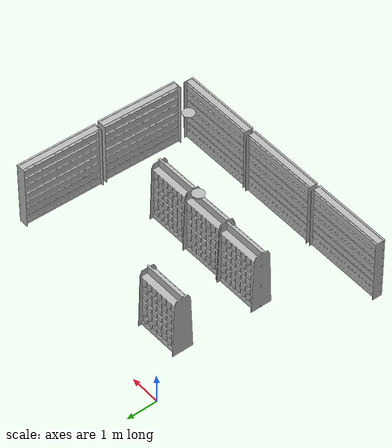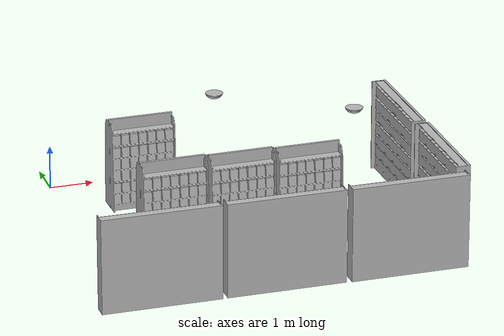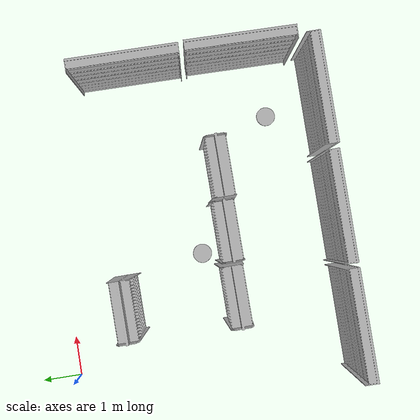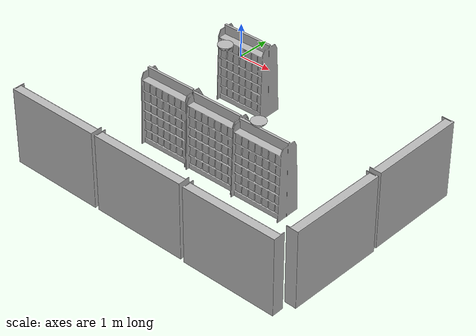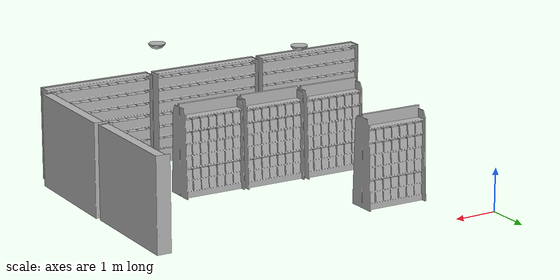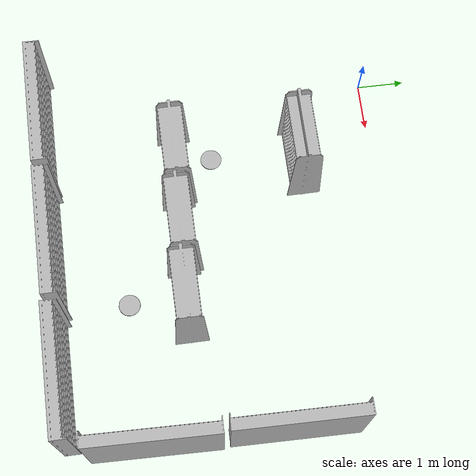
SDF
<sdf version="1.7">
 <world name="default">
  <model name="BookshelfB_01_003">
   <frame name="aws_robomaker_retail_BookshelfB_01::__model__" attached_to="aws_robomaker_retail_BookshelfB_01::link">
    <pose relative_to="__model__">0 0 0 0 -0 0</pose>
   </frame>
   <link name="aws_robomaker_retail_BookshelfB_01::link">
    <inertial>
     <mass>50</mass>
     <inertia><ixx>19.8742</ixx><ixy>0</ixy><ixz>0</ixz><iyy>49.1263</iyy><iyz>0</iyz><izz>30.2231</izz></inertia>
    </inertial>
    <collision name="collision">
     <geometry>
      <mesh>
       <uri>file://models/aws_robomaker_retail_BookshelfB_01/meshes/aws_BookshelfB_01_collision.DAE</uri>
       <scale>1 1 1</scale>
      </mesh>
     </geometry>
    </collision>
    <visual name="visual">
     <geometry>
      <mesh><uri>file://models/aws_robomaker_retail_BookshelfB_01/meshes/aws_BookshelfB_01_visual.DAE</uri></mesh>
     </geometry>
     <meta><layer>1</layer></meta>
    </visual>
    <pose relative_to="aws_robomaker_retail_BookshelfB_01::__model__">0 0 0 0 -0 0</pose>
   </link>
   <static>1</static>
   <pose>0.522246 -6.9715 0.017947 -0.003292 0 0</pose>
  </model>
  <model name="BookshelfB_01_004">
   <frame name="aws_robomaker_retail_BookshelfB_01::__model__" attached_to="aws_robomaker_retail_BookshelfB_01::link">
    <pose relative_to="__model__">0 0 0 0 -0 0</pose>
   </frame>
   <link name="aws_robomaker_retail_BookshelfB_01::link">
    <inertial>
     <mass>50</mass>
     <inertia><ixx>19.8742</ixx><ixy>0</ixy><ixz>0</ixz><iyy>49.1263</iyy><iyz>0</iyz><izz>30.2231</izz></inertia>
    </inertial>
    <collision name="collision">
     <geometry>
      <mesh>
       <uri>file://models/aws_robomaker_retail_BookshelfB_01/meshes/aws_BookshelfB_01_collision.DAE</uri>
       <scale>1 1 1</scale>
      </mesh>
     </geometry>
    </collision>
    <visual name="visual">
     <geometry>
      <mesh><uri>file://models/aws_robomaker_retail_BookshelfB_01/meshes/aws_BookshelfB_01_visual.DAE</uri></mesh>
     </geometry>
     <meta><layer>1</layer></meta>
    </visual>
    <pose relative_to="aws_robomaker_retail_BookshelfB_01::__model__">0 0 0 0 -0 0</pose>
   </link>
   <static>1</static>
   <pose>3.29339 -6.96366 0.017383 8e-06 -2e-06 -0</pose>
  </model>
  <model name="BookshelfB_01_005">
   <frame name="aws_robomaker_retail_BookshelfB_01::__model__" attached_to="aws_robomaker_retail_BookshelfB_01::link">
    <pose relative_to="__model__">0 0 0 0 -0 0</pose>
   </frame>
   <link name="aws_robomaker_retail_BookshelfB_01::link">
    <inertial>
     <mass>50</mass>
     <inertia><ixx>19.8742</ixx><ixy>0</ixy><ixz>0</ixz><iyy>49.1263</iyy><iyz>0</iyz><izz>30.2231</izz></inertia>
    </inertial>
    <collision name="collision">
     <geometry>
      <mesh>
       <uri>file://models/aws_robomaker_retail_BookshelfB_01/meshes/aws_BookshelfB_01_collision.DAE</uri>
       <scale>1 1 1</scale>
      </mesh>
     </geometry>
    </collision>
    <visual name="visual">
     <geometry>
      <mesh><uri>file://models/aws_robomaker_retail_BookshelfB_01/meshes/aws_BookshelfB_01_visual.DAE</uri></mesh>
     </geometry>
     <meta><layer>1</layer></meta>
    </visual>
    <pose relative_to="aws_robomaker_retail_BookshelfB_01::__model__">0 0 0 0 -0 0</pose>
   </link>
   <static>1</static>
   <pose>6.08038 -6.98766 0.017409 0.000174 4e-06 0</pose>
  </model>
  <model name="BookshelfB_01_006">
   <frame name="aws_robomaker_retail_BookshelfB_01::__model__" attached_to="aws_robomaker_retail_BookshelfB_01::link">
    <pose relative_to="__model__">0 0 0 0 -0 0</pose>
   </frame>
   <link name="aws_robomaker_retail_BookshelfB_01::link">
    <inertial>
     <mass>50</mass>
     <inertia><ixx>19.8742</ixx><ixy>0</ixy><ixz>0</ixz><iyy>49.1263</iyy><iyz>0</iyz><izz>30.2231</izz></inertia>
    </inertial>
    <collision name="collision">
     <geometry>
      <mesh>
       <uri>file://models/aws_robomaker_retail_BookshelfB_01/meshes/aws_BookshelfB_01_collision.DAE</uri>
       <scale>1 1 1</scale>
      </mesh>
     </geometry>
    </collision>
    <visual name="visual">
     <geometry>
      <mesh><uri>file://models/aws_robomaker_retail_BookshelfB_01/meshes/aws_BookshelfB_01_visual.DAE</uri></mesh>
     </geometry>
     <meta><layer>1</layer></meta>
    </visual>
    <pose relative_to="aws_robomaker_retail_BookshelfB_01::__model__">0 0 0 0 -0 0</pose>
   </link>
   <static>1</static>
   <pose>7.47833 -5.2983 0.017443 -0.001974 -0.000211 1.55406</pose>
  </model>
  <model name="BookshelfB_01_007">
   <frame name="aws_robomaker_retail_BookshelfB_01::__model__" attached_to="aws_robomaker_retail_BookshelfB_01::link">
    <pose relative_to="__model__">0 0 0 0 -0 0</pose>
   </frame>
   <link name="aws_robomaker_retail_BookshelfB_01::link">
    <inertial>
     <mass>50</mass>
     <inertia><ixx>19.8742</ixx><ixy>0</ixy><ixz>0</ixz><iyy>49.1263</iyy><iyz>0</iyz><izz>30.2231</izz></inertia>
    </inertial>
    <collision name="collision">
     <geometry>
      <mesh>
       <uri>file://models/aws_robomaker_retail_BookshelfB_01/meshes/aws_BookshelfB_01_collision.DAE</uri>
       <scale>1 1 1</scale>
      </mesh>
     </geometry>
    </collision>
    <visual name="visual">
     <geometry>
      <mesh><uri>file://models/aws_robomaker_retail_BookshelfB_01/meshes/aws_BookshelfB_01_visual.DAE</uri></mesh>
     </geometry>
     <meta><layer>1</layer></meta>
    </visual>
    <pose relative_to="aws_robomaker_retail_BookshelfB_01::__model__">0 0 0 0 -0 0</pose>
   </link>
   <static>1</static>
   <pose>7.47833 -2.51065 0.017402 1e-05 -1.3e-05 1.56207</pose>
  </model>
  <model name="LightA_01_001">
   <frame name="aws_robomaker_retail_LightA_01::__model__" attached_to="aws_robomaker_retail_LightA_01::link">
    <pose relative_to="__model__">0 0 0 0 -0 0</pose>
   </frame>
   <link name="aws_robomaker_retail_LightA_01::link">
    <inertial><mass>1</mass></inertial>
    <collision name="collision">
     <geometry>
      <mesh>
       <uri>file://models/aws_robomaker_retail_LightA_01/meshes/aws_LightA_01_collision.DAE</uri>
       <scale>1 1 1</scale>
      </mesh>
     </geometry>
    </collision>
    <visual name="visual">
     <geometry>
      <mesh><uri>file://models/aws_robomaker_retail_LightA_01/meshes/aws_LightA_01_visual.DAE</uri></mesh>
     </geometry>
     <meta><layer>3</layer></meta>
    </visual>
    <pose relative_to="aws_robomaker_retail_LightA_01::__model__">0 0 0 0 -0 0</pose>
   </link>
   <static>1</static>
   <pose>2.77442 -3.62815 3.15033 0 -0 0</pose>
  </model>
  <model name="LightA_01_002">
   <frame name="aws_robomaker_retail_LightA_01::__model__" attached_to="aws_robomaker_retail_LightA_01::link">
    <pose relative_to="__model__">0 0 0 0 -0 0</pose>
   </frame>
   <link name="aws_robomaker_retail_LightA_01::link">
    <inertial><mass>1</mass></inertial>
    <collision name="collision">
     <geometry>
      <mesh>
       <uri>file://models/aws_robomaker_retail_LightA_01/meshes/aws_LightA_01_collision.DAE</uri>
       <scale>1 1 1</scale>
      </mesh>
     </geometry>
    </collision>
    <visual name="visual">
     <geometry>
      <mesh><uri>file://models/aws_robomaker_retail_LightA_01/meshes/aws_LightA_01_visual.DAE</uri></mesh>
     </geometry>
     <meta><layer>3</layer></meta>
    </visual>
    <pose relative_to="aws_robomaker_retail_LightA_01::__model__">0 0 0 0 -0 0</pose>
   </link>
   <static>1</static>
   <pose>5.38399 -5.38371 3.15033 0 -0 0</pose>
  </model>
  <model name="BookshelfA_01_003_clone_clone">
   <frame name="aws_robomaker_retail_BookshelfA_01::__model__" attached_to="aws_robomaker_retail_BookshelfA_01::link">
    <pose relative_to="__model__">0 0 0 0 -0 0</pose>
   </frame>
   <link name="aws_robomaker_retail_BookshelfA_01::link">
    <inertial>
     <mass>50</mass>
     <inertia><ixx>27.7341</ixx><ixy>0</ixy><ixz>0</ixz><iyy>20.9361</iyy><iyz>0</iyz><izz>11.3596</izz></inertia>
    </inertial>
    <collision name="collision">
     <geometry>
      <mesh>
       <uri>file://models/aws_robomaker_retail_BookshelfA_01/meshes/aws_BookshelfA_01_collision.DAE</uri>
       <scale>1 1 1</scale>
      </mesh>
     </geometry>
    </collision>
    <visual name="visual">
     <geometry>
      <mesh><uri>file://models/aws_robomaker_retail_BookshelfA_01/meshes/aws_BookshelfA_01_visual.DAE</uri></mesh>
     </geometry>
     <meta><layer>1</layer></meta>
    </visual>
    <pose relative_to="aws_robomaker_retail_BookshelfA_01::__model__">0 0 0 0 -0 0</pose>
   </link>
   <static>1</static>
   <pose>3.15009 -4.31485 0.052359 0.001956 0.001359 -1.56243</pose>
  </model>
  <model name="BookshelfA_01_003_clone_clone_0">
   <frame name="aws_robomaker_retail_BookshelfA_01::__model__" attached_to="aws_robomaker_retail_BookshelfA_01::link">
    <pose relative_to="__model__">0 0 0 0 -0 0</pose>
   </frame>
   <link name="aws_robomaker_retail_BookshelfA_01::link">
    <inertial>
     <mass>50</mass>
     <inertia><ixx>27.7341</ixx><ixy>0</ixy><ixz>0</ixz><iyy>20.9361</iyy><iyz>0</iyz><izz>11.3596</izz></inertia>
    </inertial>
    <collision name="collision">
     <geometry>
      <mesh>
       <uri>file://models/aws_robomaker_retail_BookshelfA_01/meshes/aws_BookshelfA_01_collision.DAE</uri>
       <scale>1 1 1</scale>
      </mesh>
     </geometry>
    </collision>
    <visual name="visual">
     <geometry>
      <mesh><uri>file://models/aws_robomaker_retail_BookshelfA_01/meshes/aws_BookshelfA_01_visual.DAE</uri></mesh>
     </geometry>
     <meta><layer>1</layer></meta>
    </visual>
    <pose relative_to="aws_robomaker_retail_BookshelfA_01::__model__">0 0 0 0 -0 0</pose>
   </link>
   <static>1</static>
   <pose>1.61139 -4.27742 0.05231 0.001956 0.001359 -1.56243</pose>
  </model>
  <model name="BookshelfA_01_003_clone_clone_3_clone">
   <frame name="aws_robomaker_retail_BookshelfA_01::__model__" attached_to="aws_robomaker_retail_BookshelfA_01::link">
    <pose relative_to="__model__">0 0 0 0 -0 0</pose>
   </frame>
   <link name="aws_robomaker_retail_BookshelfA_01::link">
    <inertial>
     <mass>50</mass>
     <inertia><ixx>27.7341</ixx><ixy>0</ixy><ixz>0</ixz><iyy>20.9361</iyy><iyz>0</iyz><izz>11.3596</izz></inertia>
    </inertial>
    <collision name="collision">
     <geometry>
      <mesh>
       <uri>file://models/aws_robomaker_retail_BookshelfA_01/meshes/aws_BookshelfA_01_collision.DAE</uri>
       <scale>1 1 1</scale>
      </mesh>
     </geometry>
    </collision>
    <visual name="visual">
     <geometry>
      <mesh><uri>file://models/aws_robomaker_retail_BookshelfA_01/meshes/aws_BookshelfA_01_visual.DAE</uri></mesh>
     </geometry>
     <meta><layer>1</layer></meta>
    </visual>
    <pose relative_to="aws_robomaker_retail_BookshelfA_01::__model__">0 0 0 0 -0 0</pose>
   </link>
   <static>1</static>
   <pose>4.67576 -4.36927 0.052314 0.001956 0.001359 -1.56243</pose>
  </model>
  <model name="BookshelfA_01_003_clone_clone_3_clone_clone_1">
   <frame name="aws_robomaker_retail_BookshelfA_01::__model__" attached_to="aws_robomaker_retail_BookshelfA_01::link">
    <pose relative_to="__model__">0 0 0 0 -0 0</pose>
   </frame>
   <link name="aws_robomaker_retail_BookshelfA_01::link">
    <inertial>
     <mass>50</mass>
     <inertia><ixx>27.7341</ixx><ixy>0</ixy><ixz>0</ixz><iyy>20.9361</iyy><iyz>0</iyz><izz>11.3596</izz></inertia>
    </inertial>
    <collision name="collision">
     <geometry>
      <mesh>
       <uri>file://models/aws_robomaker_retail_BookshelfA_01/meshes/aws_BookshelfA_01_collision.DAE</uri>
       <scale>1 1 1</scale>
      </mesh>
     </geometry>
    </collision>
    <visual name="visual">
     <geometry>
      <mesh><uri>file://models/aws_robomaker_retail_BookshelfA_01/meshes/aws_BookshelfA_01_visual.DAE</uri></mesh>
     </geometry>
     <meta><layer>1</layer></meta>
    </visual>
    <pose relative_to="aws_robomaker_retail_BookshelfA_01::__model__">0 0 0 0 -0 0</pose>
   </link>
   <static>1</static>
   <pose>1.67586 -1.61935 0.053099 0.001956 0.001359 -1.56243</pose>
  </model>
 </world>
</sdf>
